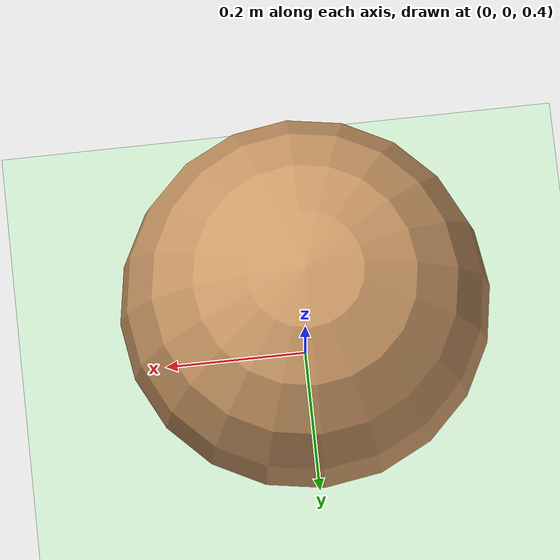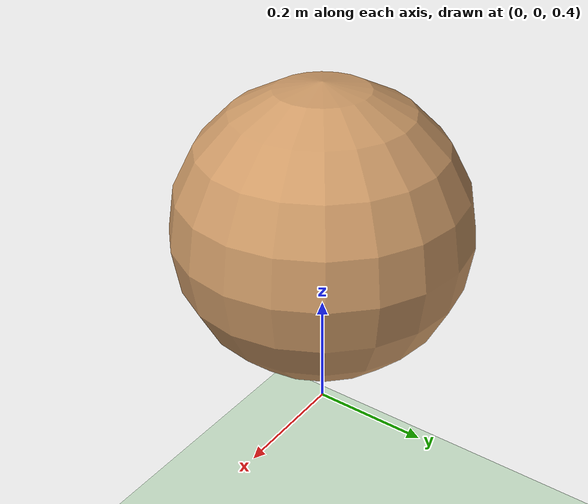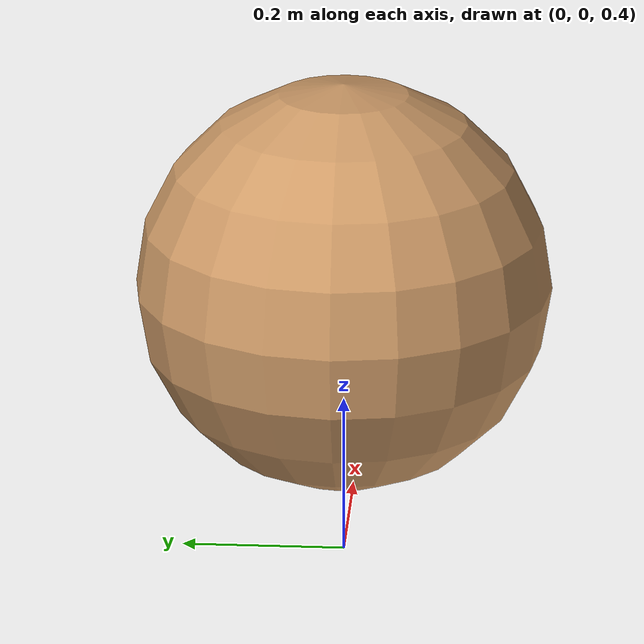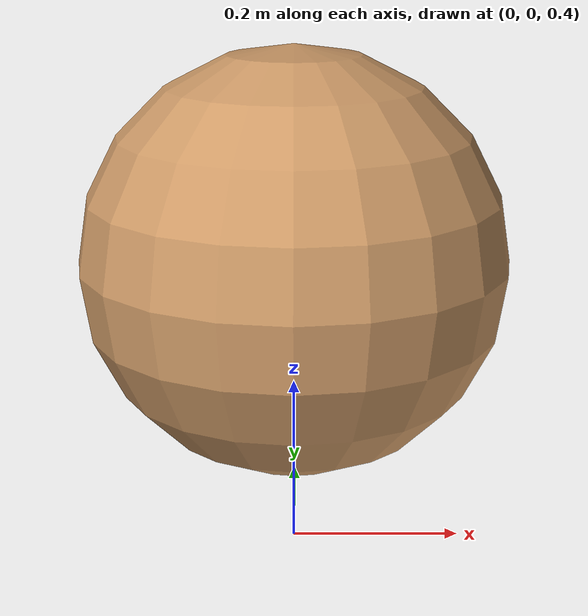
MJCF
<mujoco model="ball">
  <compiler angle="degree" coordinate="local" inertiafromgeom="true"/>
  <option integrator="RK4" timestep="0.01"/>
  <custom>
    <numeric data="0.0 0.0 0.55" name="init_qpos"/>
  </custom>
  <default>
    <joint armature="1" damping="1" limited="true"/>
    <geom conaffinity="0" condim="3" density="5.0" friction="1 0.5 0.5" margin="0.01" rgba="0.8 0.6 0.4 1"/>
  </default>
  <asset>
    <texture builtin="gradient" height="100" rgb1="1 1 1" rgb2="0 0 0" type="skybox" width="100"/>
    <texture builtin="flat" height="1278" mark="cross" markrgb="1 1 1" name="texgeom" random="0.01" rgb1="0.8 0.6 0.4" rgb2="0.8 0.6 0.4" type="cube" width="127"/>
    <texture builtin="checker" height="100" name="texplane" rgb1="0 0 0" rgb2="0.8 0.8 0.8" type="2d" width="100"/>
    <material name="MatPlane" reflectance="0.5" shininess="1" specular="1" texrepeat="60 60" texture="texplane"/>
    <material name="geom" texture="texgeom" texuniform="true"/>
  </asset>
  <worldbody>
    <light cutoff="100" diffuse="1 1 1" dir="-0 0 -1.3" directional="true" exponent="1" pos="0 0 1.3" specular=".1 .1 .1"/>
    <geom conaffinity="1" condim="3" material="MatPlane" name="floor" pos="0 0 0" rgba="0.8 0.9 0.8 1" size="40 40 40" type="plane" />
    <body name="torso_inner" pos="0 0 0.75">
      <camera name="track" mode="trackcom" pos="0 -3 0.3" xyaxes="1 0 0 0 0 1"/>
      <camera name="first_person" mode="trackcom" pos="0 0 0" xyaxes="0 -1 0 0 0 1"/>
      <geom name="torso_geom_inner" pos="0 0 0" size="0.2" type="sphere" conaffinity="0" />
      <joint armature="0" damping="0.1" limited="false" margin="0.01" name="root" pos="0 0 0" type="free"/>
      <body name="torso_outer" pos="0 0 0">
        <geom name="torso_geom_outer" pos="0 0 0" size="0.25" type="sphere" contype="1" material="geom" />
        <!-- The stick is meant to stabilize the ball so that it stays upright. Otherwise, if it rolls forward and turns at the same time, the momentum will cause it to roll in the wrong direction. -->
        <geom name="stick" pos="0 0 0" size="0.25 1" axisangle="1 0 0 90" type="capsule" contype="1" mass="0" density="0" rgba="0 0 0 0"/>
        <joint armature="0" damping="0.01" limited="false" margin="0.01" name="roll" pos="0 0 0" axis="0 1 0" type="hinge"/>
      </body>
    </body>
  </worldbody>
  <contact>
    <!-- No friction between the stabilizing stick and the floor -->
    <pair name="stick_to_floor" geom1="floor" geom2="stick" friction="0 0 0 0 0" />
  </contact>
  <actuator>
    <velocity ctrllimited="true" ctrlrange="-1.0 1.0" joint="root" name="turn" gear="0 0 0 0 0 1.5" />
    <velocity ctrllimited="true" ctrlrange="-1.0 1.0" joint="roll" name="roll" gear="0.5 0 0 0 0 0" />
  </actuator>
</mujoco>
